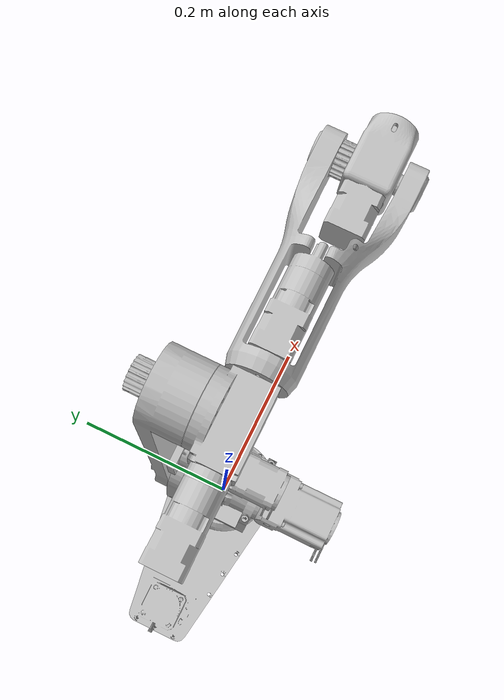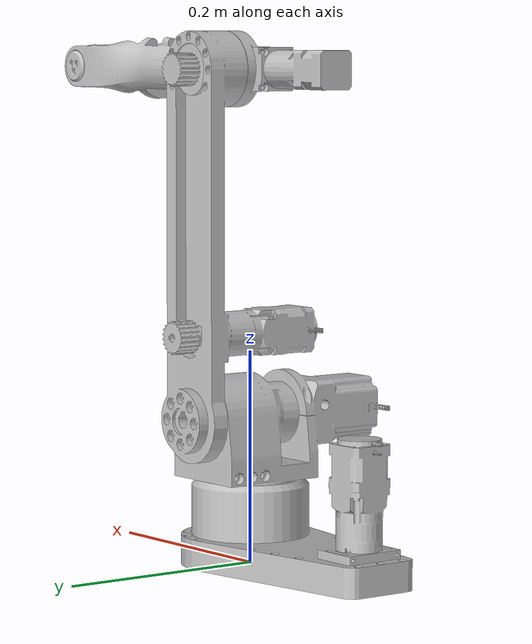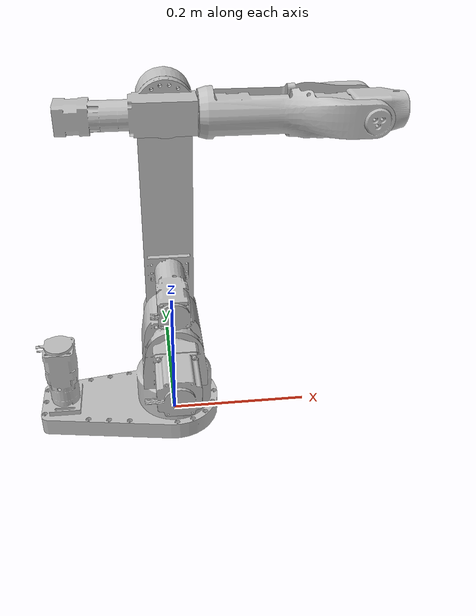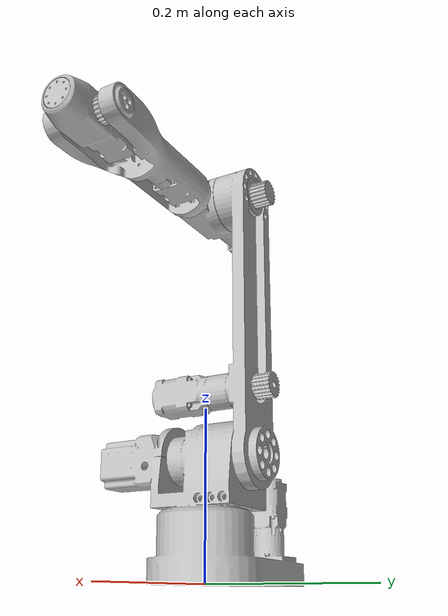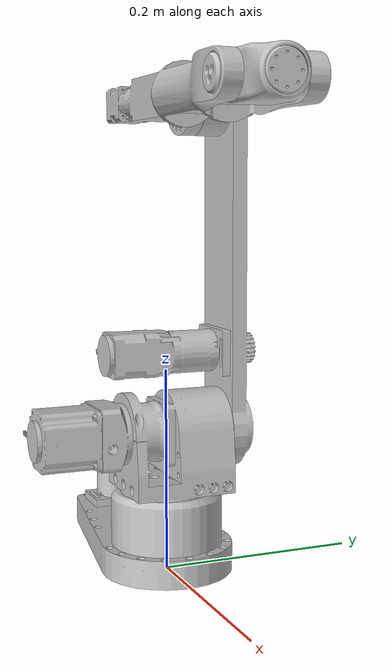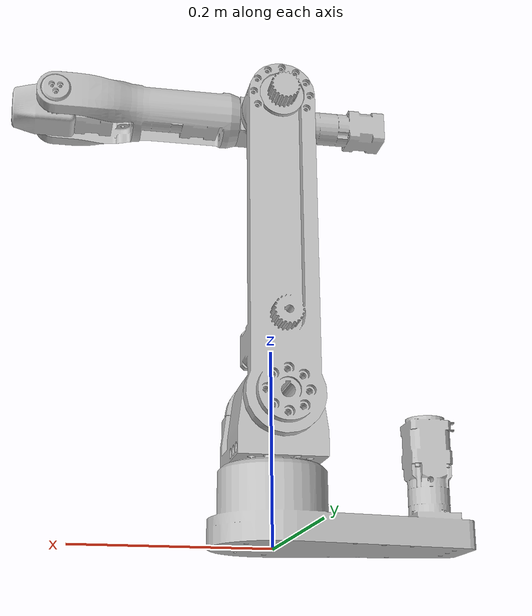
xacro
<?xml version="1.0"?>
<robot xmlns:xacro="http://www.ros.org/wiki/xacro" name="robot_arm" >

	<xacro:arg name="namespace" default="robot1"/>

    <material name="white">
        <color rgba="1 1 1 1"/>
    </material>

    <material name="orange">
        <color rgba="1 0.3 0.1 1"/>
    </material>

    <material name="blue">
        <color rgba="0.2 0.2 1 1"/>
    </material>

    <material name="black">
        <color rgba="0 0 0 1"/>
    </material>

    <!-- ################# Base Link ################# -->

    <link name="$(arg namespace)_base_link">
        <inertial>
            <origin xyz="-0.038799 5.6771E-08 0.039037" rpy="0 0 0"/>
            <mass value="4.037"/>
            <inertia
                ixx="0.0047485"
                ixy="6.9936E-08"
                ixz="2.5452E-06"
                iyy="0.01214"
                iyz="-4.4737E-10"
                izz="0.015979"/>
        </inertial>
        <visual>
            <origin xyz="0 0 0" rpy="0 0 0"/>
            <geometry>
                <mesh filename="package://arm_control/description/meshes/base_link.STL"/>
            </geometry>
            <material name="">
                <color rgba="0.75294 0.75294 0.75294 1"/>
            </material>
        </visual>
        <collision>
            <origin xyz="0 0 0" rpy="0 0 0"/>
            <geometry>
                <mesh filename="package://arm_control/description/meshes/base_link.STL"/>
            </geometry>
        </collision>
    </link>

    <!-- ################# Arm Link 1 ################# -->
    <link name="$(arg namespace)_Link1">
        <inertial>
            <origin xyz="4.7367E-05 0.10068 0.020948" rpy="0 0 0" />
            <mass value="0.97007" />
            <inertia
                ixx="0.0010278"
                ixy="-3.2684E-07"
                ixz="-5.2705E-07"
                iyy="0.001187"
                iyz="2.9768E-06"
                izz="0.00070562" />
        </inertial>
        <visual>
            <origin xyz="0 0 0" rpy="0 0 0" />
            <geometry>
                <mesh filename="package://arm_control/description/meshes/Link1.STL" />
            </geometry>
            <material name="">
                <color rgba="0.75294 0.75294 0.75294 1" />
            </material>
        </visual>
        <collision>
            <origin xyz="0 0 0" rpy="0 0 0" />
            <geometry>
                <mesh filename="package://arm_control/description/meshes/Link1.STL" />
            </geometry>
        </collision>
    </link>
    <joint name="$(arg namespace)_J1" type="revolute">
        <origin xyz="0 0 0.0059964" rpy="1.5708 0 0" />
        <parent link="$(arg namespace)_base_link" />
        <child link="$(arg namespace)_Link1" />
        <axis xyz="0 -1 0" />
        <limit lower="-3.14" upper="3.14" effort="10" velocity="10" />
    </joint>
    <gazebo>
        <material> Gazebo/White </material>
    </gazebo>

    <!-- ################# Arm Link 2 ################# -->
    <link name="$(arg namespace)_Link2">
        <inertial>
            <origin xyz="-1.46417876076469E-06 0.117729185705366 -0.0378668860722142" rpy="0 0 0" />
            <mass value="0.577415758791343" />
            <inertia
                ixx="0.0036047406071256"
                ixy="6.4776030540196E-08"
                ixz="1.20114307201048E-07"
                iyy="0.000412136925722125"
                iyz="-1.52201263463148E-05"
                izz="0.00360983067595921" />
        </inertial>
        <visual>
            <origin xyz="0 0 0" rpy="0 0 0" />
            <geometry>
                <mesh filename="package://arm_control/description/meshes/Link2.STL" />
            </geometry>
            <material name="">
                <color rgba="0.752941176470588 0.752941176470588 0.752941176470588 1" />
            </material>
        </visual>
        <collision>
            <origin xyz="0 0 0" rpy="0 0 0" />
            <geometry>
                <mesh filename="package://arm_control/description/meshes/Link2.STL" />
            </geometry>
        </collision>
    </link>
    <joint name="$(arg namespace)_J2" type="revolute">
        <origin xyz="0 0.134 0" rpy="0 0 0" />
        <parent link="$(arg namespace)_Link1" />
        <child link="$(arg namespace)_Link2" />
        <axis xyz="0 0 -1" />
        <limit lower="-1.57" upper="1.57" effort="0" velocity="0" />
    </joint>
    <gazebo>
        <material> Gazebo/White </material>
    </gazebo>

    <!-- ################# Arm Link 3 ################# -->
    <link name="$(arg namespace)_Link3">
        <inertial>
            <origin xyz="-0.0328882111255075 8.45678153449381E-07 -0.0129958354849986" rpy="0 0 0" />
            <mass value="0.251663957012598" />
            <inertia
                ixx="6.72067273429369E-05"
                ixy="4.83904268931055E-09"
                ixz="-2.18784718458254E-08"
                iyy="0.000125285505512965"
                iyz="3.49876261972673E-15"
                izz="0.000132327236956115" />
        </inertial>
        <visual>
            <origin xyz="0 0 0" rpy="0 0 0" />
            <geometry>
                <mesh filename="package://arm_control/description/meshes/Link3.STL" />
            </geometry>
            <material name="">
                <color rgba="0.752941176470588 0.752941176470588 0.752941176470588 1" />
            </material>
        </visual>
        <collision>
            <origin xyz="0 0 0" rpy="0 0 0" />
            <geometry>
                <mesh filename="package://arm_control/description/meshes/Link3.STL" />
            </geometry>
        </collision>
    </link>
    <joint name="$(arg namespace)_J3" type="revolute">
        <origin xyz="0 0.322 0" rpy="0 0 0" />
        <parent link="$(arg namespace)_Link2" />
        <child link="$(arg namespace)_Link3" />
        <axis xyz="0 0 -1" />
        <limit lower="0" upper="3.14" effort="10" velocity="10" />
    </joint>
    <gazebo>
        <material> Gazebo/White </material>
    </gazebo>

    <!-- ################# Arm Link 4 ################# -->
    <link name="$(arg namespace)_Link4">
        <inertial>
            <origin xyz="0.099774322521478 -0.000172379735017603 0.00118588583890608" rpy="0 0 0" />
            <mass value="0.356013835274962" />
            <inertia
            ixx="0.000270166646517537"
            ixy="-2.8024785401758E-07"
            ixz="-2.10227432082948E-05"
            iyy="0.00116383385329662"
            iyz="-8.06758147658775E-08"
            izz="0.000994142094397537" />
        </inertial>
        <visual>
            <origin xyz="0 0 0" rpy="0 0 0" />
            <geometry>
                <mesh filename="package://arm_control/description/meshes/Link4.STL" />
            </geometry>
            <material name="">
                <color rgba="0.752941176470588 0.752941176470588 0.752941176470588 1" />
            </material>
        </visual>
        <collision>
            <origin xyz="0 0 0" rpy="0 0 0" />
            <geometry>
                <mesh filename="package://arm_control/description/meshes/Link4.STL" />
            </geometry>
        </collision>
    </link>
    <joint name="$(arg namespace)_J4" type="revolute">
        <origin xyz="0.03 0 0" rpy="0 0 0" />
        <parent link="$(arg namespace)_Link3" />
        <child link="$(arg namespace)_Link4" />
        <axis xyz="1 0 0" />
        <limit lower="-3.14" upper="3.14" effort="10" velocity="10" />
    </joint>
    <gazebo>
        <material> Gazebo/White </material>
    </gazebo>

    <!-- ################# Arm Link 5 ################# -->
    <link name="$(arg namespace)_Link5">
        <inertial>
            <origin xyz="-0.00745918037903059 1.44166386780165E-05 -0.00833926520904369" rpy="0 0 0" />
            <mass value="0.175482504091363" />
            <inertia
                ixx="5.10545535580843E-05"
                ixy="-5.97452165278952E-08"
                ixz="1.44581078477868E-06"
                iyy="0.000107503817667908"
                iyz="5.76444930838975E-09"
                izz="0.000100856356891325" />
        </inertial>
        <visual>
            <origin xyz="0 0 0" rpy="0 0 0" />
            <geometry>
                <mesh filename="package://arm_control/description/meshes/Link5.STL" />
            </geometry>
            <material name="">
                <color rgba="0.752941176470588 0.752941176470588 0.752941176470588 1" />
            </material>
        </visual>
        <collision>
            <origin xyz="0 0 0" rpy="0 0 0" />
            <geometry>
                <mesh filename="package://arm_control/description/meshes/Link5.STL" />
            </geometry>
        </collision>
    </link>
    <joint name="$(arg namespace)_J5" type="revolute">
        <origin xyz="0.20275 0 0" rpy="3.1416 0 0" />
        <parent link="$(arg namespace)_Link4" />
        <child link="$(arg namespace)_Link5" />
        <axis xyz="0 0 -1" />
        <limit lower="-1.57" upper="1.57" effort="10" velocity="10" />
    </joint>
    <gazebo>
        <material> Gazebo/White </material>
    </gazebo>

    <!-- ################# Arm Link 6 ################# -->
    <link name="$(arg namespace)_Link6">
        <inertial>
            <origin xyz="0.00833988976417116 0.000113774503086972 -1.32769045757541E-10" rpy="0 0 0" />
            <mass value="0.0135263682638669" />
            <inertia
                ixx="2.02217071919662E-06"
                ixy="5.87479646435333E-09"
                ixz="-8.97698504642466E-15"
                iyy="1.3204524747585E-06"
                iyz="-1.52963229446115E-14"
                izz="1.3036592664547E-06" />
        </inertial>
        <visual>
            <origin xyz="0 0 0" rpy="0 0 0" />
            <geometry>
                <mesh filename="package://arm_control/description/meshes/Link6.STL" />
            </geometry>
            <material name="">
                <color rgba="0.752941176470588 0.752941176470588 0.752941176470588 1" />
            </material>
        </visual>
        <collision>
            <origin xyz="0 0 0" rpy="0 0 0" />
            <geometry>
                <mesh filename="package://arm_control/description/meshes/Link6.STL" />
            </geometry>
        </collision>
    </link>
    <joint name="$(arg namespace)_J6" type="revolute">
        <origin xyz="0.02825 0 -0.01" rpy="-3.1416 0 0" />
        <parent link="$(arg namespace)_Link5" />
        <child link="$(arg namespace)_Link6" />
        <axis xyz="1 0 0" />
        <limit lower="-3.14" upper="3.14" effort="10" velocity="10" />
    </joint>
    <gazebo>
        <material> Gazebo/White </material>
    </gazebo>

    <!-- ################# ROS2 Control Joints ################# -->
	<ros2_control name="GazeboSystem" type="system">
        <hardware>
            <plugin class_type="gazebo_ros2_control/GazeboSystem" name="gazebo_ros2_control">
                <param name="update_rate">100</param>
            </plugin>
        </hardware>

 		<joint name="$(arg namespace)_J1">
            <command_interface name="effort"/>
			<state_interface name="position"/>
		</joint>
		<joint name="$(arg namespace)_J2">
            <command_interface name="effort"/>
			<state_interface name="position"/>
		</joint>
		<joint name="$(arg namespace)_J3">
            <command_interface name="effort"/>
			<state_interface name="position"/>
		</joint>
		<joint name="$(arg namespace)_J4">
            <command_interface name="effort"/>
			<state_interface name="position"/>
		</joint>
		<joint name="$(arg namespace)_J5">
            <command_interface name="effort"/>
			<state_interface name="position"/>
		</joint>
		<joint name="$(arg namespace)_J6">
            <command_interface name="effort"/>
			<state_interface name="position"/>
		</joint>
	</ros2_control>
</robot>
